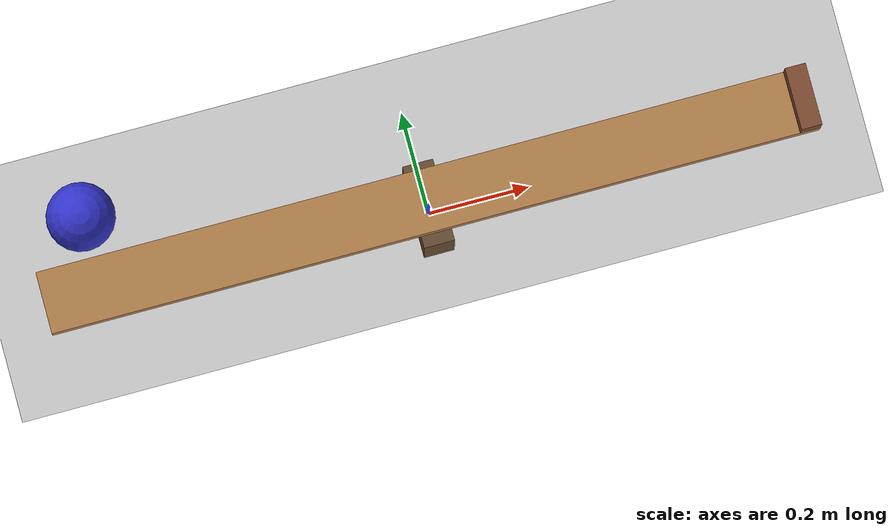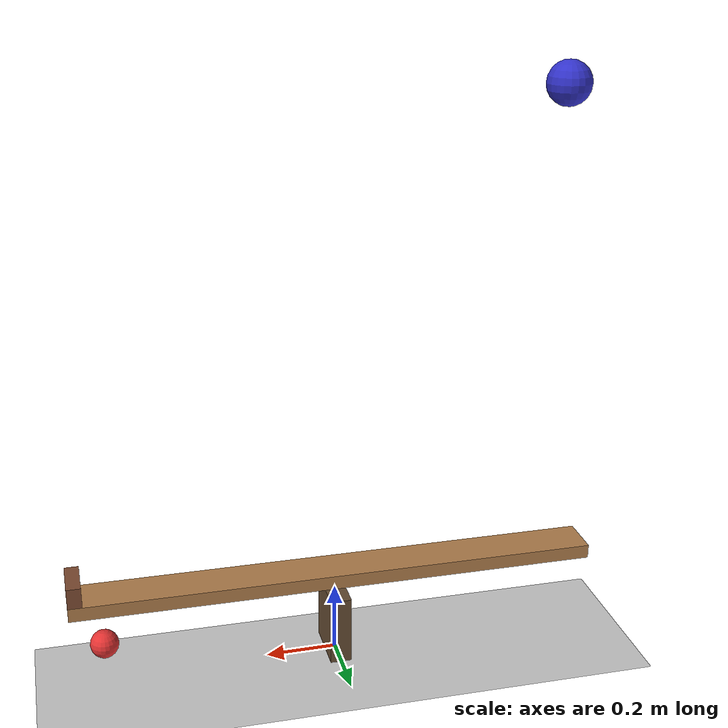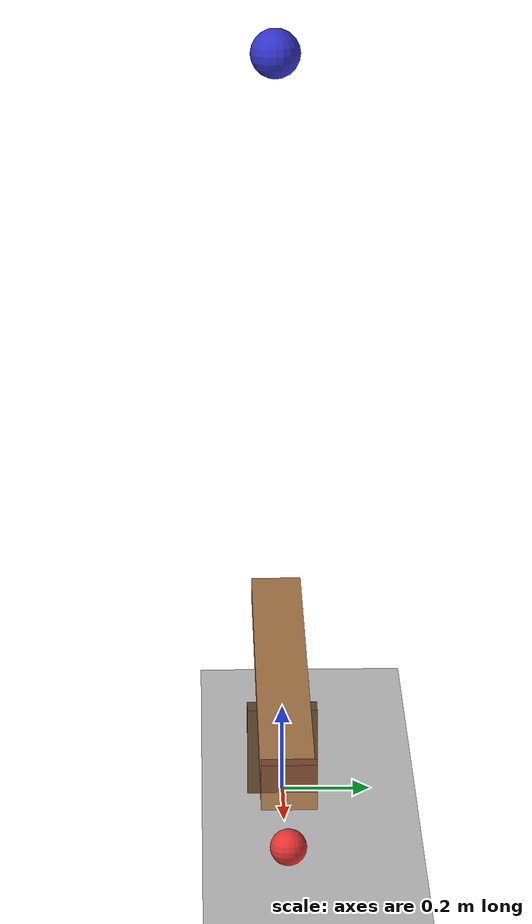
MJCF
<mujoco model="seesaw_catapult">
  <compiler angle="radian"/>
  <option timestep="0.002" gravity="0 0 -9.81"/>
  <worldbody>
    <light name="sun" pos="0 0 4" dir="0 0 -1" directional="true"/>
    <geom name="floor" type="plane" size="5 5 0.1" rgba="0.8 0.8 0.8 1"/>
    <geom name="fulcrum" type="box" pos="0 0 0.1" size="0.03 0.08 0.1" contype="0" conaffinity="0" rgba="0.4 0.3 0.2 1"/>
    <body name="seesaw" pos="0 0 0.25">
      <joint name="pivot" type="hinge" axis="0 1 0" limited="true" range="-0.3 0.3"/>
      <geom name="plank" type="box" size="0.75 0.06 0.02" mass="0.3" rgba="0.7 0.5 0.3 1"/>
      <geom name="lip" type="box" pos="0.73 0 0.05" size="0.02 0.06 0.03" mass="0.01" rgba="0.5 0.3 0.2 1"/>
    </body>
    <body name="weight" pos="-0.615 0 1.6">
      <freejoint/>
      <geom name="weight" type="sphere" size="0.06" mass="1.0" rgba="0.2 0.2 0.8 1"/>
    </body>
    <body name="ball" pos="0.6578 0 0.110">
      <freejoint/>
      <geom name="ball" type="sphere" size="0.04" mass="0.1" rgba="0.9 0.2 0.2 1"/>
    </body>
  </worldbody>
  <keyframe>
    <key name="start" qpos="0.3 -0.615 0 1.6 1 0 0 0 0.6578 0 0.110 1 0 0 0"/>
  </keyframe>
</mujoco>
